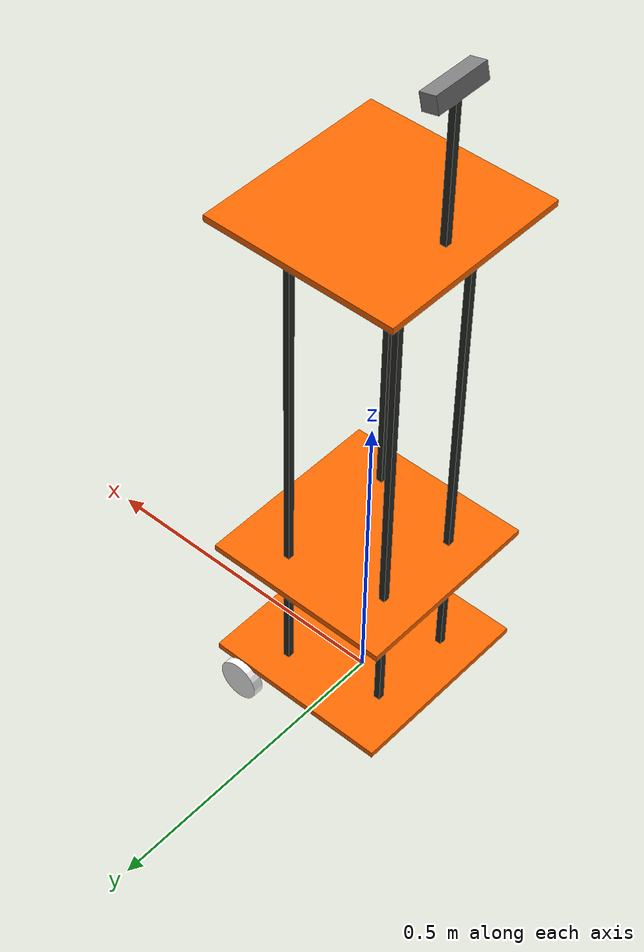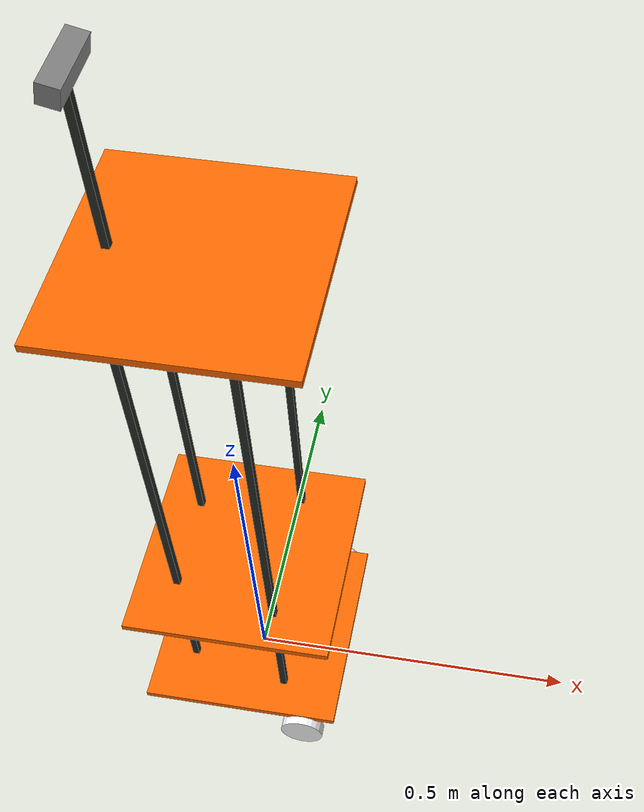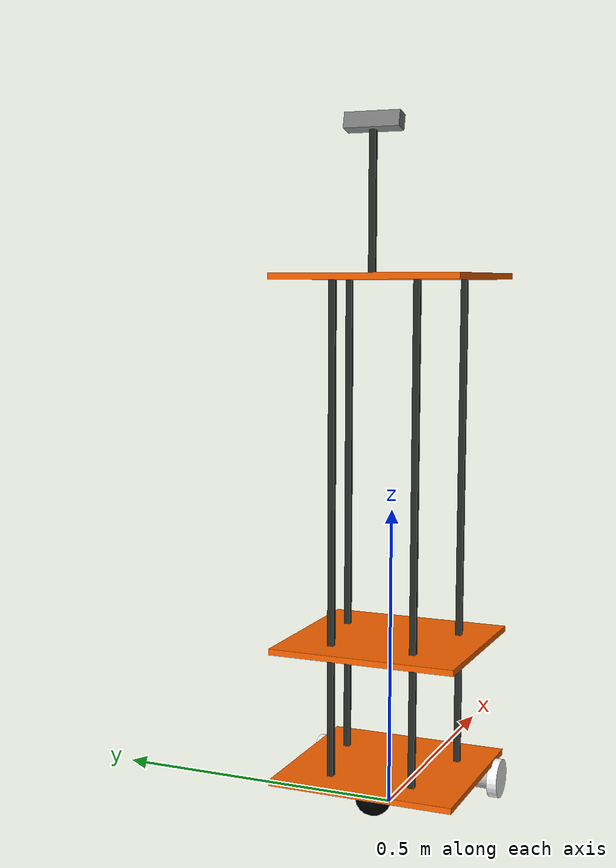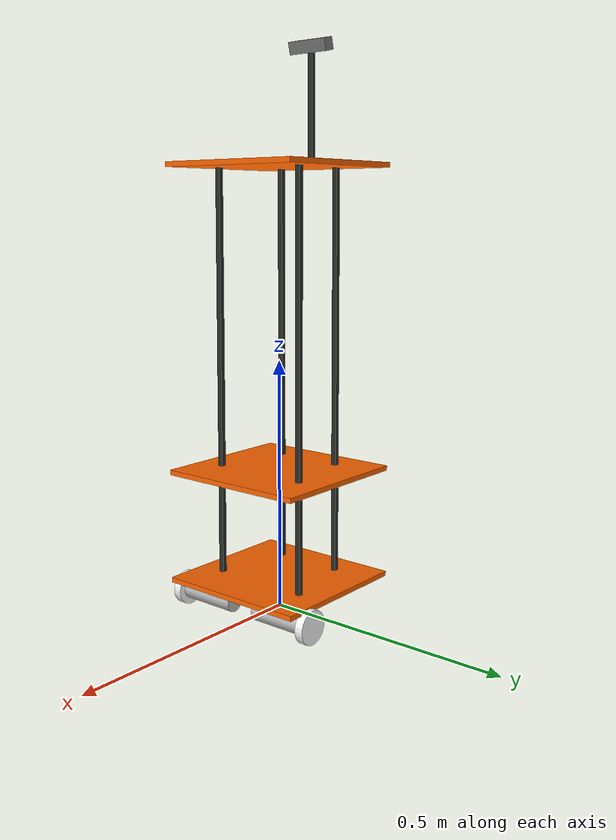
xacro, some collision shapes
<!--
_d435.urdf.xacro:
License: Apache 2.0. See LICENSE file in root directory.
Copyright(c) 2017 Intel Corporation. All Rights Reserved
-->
<?xml version="1.0"?>
<robot name="mrobot" xmlns:xacro="http://www.ros.org/wiki/xacro">

    <xacro:include filename="$(find nav_ros)/urdf/my_robot.urdf.xacro" />
    <xacro:include filename="$(find nav_ros)/urdf/_d435.urdf.xacro" />

    <mrobot_body/>
    <sensor_d435 parent="standoff_2in_9_link">
        <origin xyz="0 0 0.11" rpy="0 0.23 0.0"/>
    </sensor_d435>
</robot>

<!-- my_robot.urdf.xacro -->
<robot xmlns:xacro="http://www.ros.org/wiki/xacro">

    <xacro:property name="M_PI" value="3.14159"/>
    <xacro:property name="wheel_radius" value="0.033"/>
    <xacro:property name="wheel_length" value="0.017"/>
    <xacro:property name="wheel_offset_x" value="-0.1"/>
    <xacro:property name="wheel_offset_y" value="0.17"/>
    <xacro:property name="wheel_offset_z" value="-0.03"/>
    <xacro:property name="base_link_x" value="0.30"/>
    <xacro:property name="base_link_y" value="0.31"/>
    <xacro:property name="base_link_z" value="0.01"/>
    <xacro:property name="motor_radius" value="0.02"/>
    <xacro:property name="motor_length" value="0.12"/>
    <xacro:property name="motor_x" value="0.1"/>
    <xacro:property name="motor_y" value="0.09"/>
    <xacro:property name="plate_height1" value="0.22"/>
    <xacro:property name="plate_height2" value="0.6" />
    <xacro:property name="plate_height3" value="0.11" />
    <xacro:property name="standoff_x" value="0.12"/>
    <xacro:property name="standoff_y" value="0.10"/>
    <xacro:property name="stand_height_1" value="0.3" />
    <xacro:property name="stand_height_2" value="0.6" />
    <xacro:property name="stand_height_3" value="0.15" />

    <!-- 定义支架的宏 -->
    <xacro:macro name="mrobot_standoff_2in" params="parent number x_loc y_loc z_loc">
        <joint name="standoff_2in_${number}_joint" type="fixed">
            <origin xyz="${x_loc} ${y_loc} ${z_loc}" rpy="0 0 0" />
            <parent link="${parent}"/>
            <child link="standoff_2in_${number}_link" />
        </joint>

        <link name="standoff_2in_${number}_link">
            <inertial>
                <mass value="0.001" />
                <origin xyz="0 0 0" />
                <inertia ixx="0.0001" ixy="0.0" ixz="0.0"
                         iyy="0.0001" iyz="0.0"
                         izz="0.0001" />
            </inertial>

            <visual>
                <origin xyz=" 0 0 0 " rpy="0 0 0" />
                <geometry>
                    <box size="0.01 0.01 ${z_loc*2}" />
                </geometry>
                <material name="black">
                    <color rgba="0.16 0.17 0.15 0.9"/>
                </material>
            </visual>

            <collision>
                <origin xyz="0.0 0.0 0.0" rpy="0 0 0" />
                <geometry>
                    <box size="0.01 0.01 ${z_loc*2}" />
                </geometry>
            </collision>
        </link>
    </xacro:macro>

    <!--定义的是机械结构的整体-->
    <xacro:macro name="mrobot_body">
        <material name="Green">
            <color rgba="0.0 0.8 0.0 1.0"/>
        </material>
        <material name="yellow">
            <color rgba="1 0.4 0 1"/>
        </material>
        <material name="black">
            <color rgba="0 0 0 0.95"/>
        </material>
        <material name="gray">
            <color rgba="0.75 0.75 0.75 1"/>
        </material>

        <link name="base_footprint">
            <visual>
                <origin xyz="0 0 0" rpy="0 0 0" />
                <geometry>
                    <box size="0.001 0.001 0.001" />
                </geometry>
            </visual>
        </link>

        <link name="base_link">
            <inertial>
                <mass value="2" />
                <origin xyz="0 0 0.0" />
                <inertia ixx="0.01" ixy="0.0" ixz="0.0"
                         iyy="0.01" iyz="0.0" izz="0.5" />
            </inertial>

            <visual>
                <origin xyz=" 0 0 0" rpy="0 0 0" />
                <geometry>
                    <box size="${base_link_x} ${base_link_y} ${base_link_z}"/>
                </geometry>
                <material name="yellow" />
            </visual>

            <collision>
                <origin xyz="0 0 0" rpy="0 0 0" />
                <geometry>
                    <box size="${base_link_x} ${base_link_y} ${base_link_z}"/>
                </geometry>
            </collision>
        </link>

        <joint name="base_footprint_joint" type="fixed">
            <origin xyz="0 0 ${-wheel_offset_z*2}" rpy="0 0 0" />
            <parent link="base_footprint"/>
            <child link="base_link" />
        </joint>

        <link name="left_motor">
            <inertial>
                <origin xyz="0.0 0 0"/>
                <mass value="0.1" />
                <inertia ixx="0.001" ixy="0.0" ixz="0.0"
                         iyy="0.001" iyz="0.0" izz="0.001" />
            </inertial>

            <visual>
                <origin xyz="0 0 0" rpy="${M_PI/2} 0 0" />
                <geometry>
                    <cylinder radius="${motor_radius}" length = "${motor_length}"/>
                </geometry>
                <material name="gray" />
            </visual>

            <collision>
                <origin xyz="0 0 0" rpy="${M_PI/2} 0 0" />
                <geometry>
                    <cylinder radius="${motor_radius}" length = "${motor_length}"/>
                </geometry>
            </collision>
        </link>

        <joint name="base_left_motor_joint" type="fixed">
            <origin xyz="${motor_x} ${motor_y} ${wheel_offset_z}" rpy="0 0 0" />
            <parent link="base_link"/>
            <child link="left_motor" />
        </joint>

        <link name="left_wheel_link">
            <inertial>
                <origin xyz="0 0 0"/>
                <mass value="0.01" />
                <inertia ixx="0.001" ixy="0.0" ixz="0.0"
                         iyy="0.001" iyz="0.0" izz="0.001" />
            </inertial>

            <visual>
                <origin xyz="0 0 0" rpy="${M_PI/2} 0 0" />
                <geometry>
                    <cylinder radius="${wheel_radius}" length = "${wheel_length}"/>
                </geometry>
                <material name="white">
                    <color rgba="1 1 1 0.9"/>
                </material>
            </visual>

            <collision>
                <origin xyz="0 0 0" rpy="${M_PI/2} 0 0" />
                <geometry>
                    <cylinder radius="${wheel_radius}" length = "${wheel_length}"/>
                </geometry>
            </collision>
        </link>

        <joint name="left_wheel_joint" type="continuous">
            <origin xyz="0 ${(motor_length+wheel_length)/2} 0" rpy="0 0 0"/>
            <parent link="left_motor"/>
            <child link="left_wheel_link"/>
            <axis xyz="0 1 0"/>
        </joint>

        <link name="right_motor">
            <inertial>
                <origin xyz="0.0 0 0"/>
                <mass value="0.1" />
                <inertia ixx="0.001" ixy="0.0" ixz="0.0"
                         iyy="0.001" iyz="0.0" izz="0.001" />
            </inertial>

            <visual>
                <origin xyz="0 0 0" rpy="${M_PI/2} 0 0" />
                <geometry>
                    <cylinder radius="${motor_radius}" length = "${motor_length}" />
                </geometry>
                <material name="gray" />
            </visual>

            <collision>
                <origin xyz="0 0 0" rpy="${M_PI/2} 0 0" />
                <geometry>
                    <cylinder radius="${motor_radius}" length = "${motor_length}"/>
                </geometry>
            </collision>
        </link>

        <joint name="base_right_motor_joint" type="fixed">
            <origin xyz="${motor_x} -${motor_y} ${wheel_offset_z}" rpy="0 0 0" />
            <parent link="base_link"/>
            <child link="right_motor" />
        </joint>

        <link name="right_wheel_link">
            <inertial>
                <origin xyz="0 0 0"/>
                <mass value="0.01" />
                <inertia ixx="0.001" ixy="0.0" ixz="0.0"
                         iyy="0.001" iyz="0.0" izz="0.001" />
            </inertial>

            <visual>
                <origin xyz="0 0 0" rpy="${M_PI/2} 0 0" />
                <geometry>
                    <cylinder radius="${wheel_radius}" length = "${wheel_length}"/>
                </geometry>
                <material name="white">
                    <color rgba="1 1 1 0.9"/>
                </material>
            </visual>

            <collision>
                <origin xyz="0 0 0" rpy="${M_PI/2} 0 0" />
                <geometry>
                    <cylinder radius="${wheel_radius}" length = "${wheel_length}"/>
                </geometry>
            </collision>
        </link>

        <joint name="right_wheel_joint" type="continuous">
            <origin xyz="0 -${(motor_length+wheel_length)/2} 0" rpy="0 0 0"/>
            <parent link="right_motor"/>
            <child link="right_wheel_link"/>
            <axis xyz="0 1 0"/>
        </joint>

        <link name="front_caster_link">
            <inertial>
                <origin xyz="0 0 0"/>
                <mass value="0.001" />
                <inertia ixx="0.0001" ixy="0.0" ixz="0.0"
                         iyy="0.0001" iyz="0.0" izz="0.0001" />
            </inertial>

            <visual>
                <origin xyz="0 0 0" rpy="${M_PI/2} 0 0"/>
                <geometry>
                    <sphere radius="0.03" />
                </geometry>
                <material name="black" />
            </visual>

            <collision>
                <origin xyz="0 0 0.01" rpy="${M_PI/2} 0 0" />
                <geometry>
                    <sphere radius="0.1" />
                </geometry>
            </collision>
        </link>

        <joint name="front_caster_joint" type="fixed">
            <origin xyz="-${base_link_z+wheel_radius/2+0.05} 0 -${wheel_radius/2 + base_link_z}" rpy="0 0 0"/>
            <parent link="base_link"/>
            <child link="front_caster_link"/>
        </joint>

        <mrobot_standoff_2in parent="base_link" number="1" x_loc="-${standoff_x/2 + 0.03}" y_loc="-${standoff_y - 0.03}" z_loc="${plate_height1/2+base_link_z/2-0.005}" />
        <mrobot_standoff_2in parent="base_link" number="2" x_loc="-${standoff_x/2 + 0.03}" y_loc="${standoff_y - 0.03}" z_loc="${plate_height1/2+base_link_z/2-0.005}" />
        <mrobot_standoff_2in parent="base_link" number="3" x_loc="${standoff_x/2}" y_loc="-${standoff_y}" z_loc="${plate_height1/2+base_link_z/2-0.005}" />
        <mrobot_standoff_2in parent="base_link" number="4" x_loc="${standoff_x/2}" y_loc="${standoff_y}" z_loc="${plate_height1/2+base_link_z/2-0.005}" />

        <joint name="plate_1_joint" type="fixed">
            <origin xyz="0 0 ${plate_height1}" rpy="0 0 0" />
            <parent link="base_link"/>
            <child link="plate_1_link" />
        </joint>

        <link name="plate_1_link">
            <inertial>
                <mass value="0.1" />
                <origin xyz="0 0 0" />
                <inertia ixx="0.01" ixy="0.0" ixz="0.0"
                         iyy="0.01" iyz="0.0" izz="0.01" />
            </inertial>

            <visual>
                <origin xyz=" 0 0 0 " rpy="0 0 0" />
                <geometry>
                    <box size="${base_link_x} ${base_link_y} ${base_link_z}"/>
                </geometry>
                <material name="yellow"/>
                <alpha type="0.5"/>
            </visual>

            <collision>
                <origin xyz="0.0 0.0 0.0" rpy="0 0 0" />
                <geometry>
                    <box size="${base_link_x} ${base_link_y} ${base_link_z}"/>
                </geometry>
            </collision>
        </link>

        <mrobot_standoff_2in parent="plate_1_link" number="5" x_loc="-${standoff_x/2 + 0.03}" y_loc="-${standoff_y - 0.03}" z_loc="${plate_height2/2}" />
        <mrobot_standoff_2in parent="plate_1_link" number="6" x_loc="-${standoff_x/2 + 0.03}" y_loc="${standoff_y - 0.03}" z_loc="${plate_height2/2}" />
        <mrobot_standoff_2in parent="plate_1_link" number="7" x_loc="${standoff_x/2}" y_loc="-${standoff_y}" z_loc="${plate_height2/2}" />
        <mrobot_standoff_2in parent="plate_1_link" number="8" x_loc="${standoff_x/2}" y_loc="${standoff_y}" z_loc="${plate_height2/2}" />

        <joint name="plate_2_joint" type="fixed">
            <origin xyz="0 0 ${plate_height2}" rpy="0 0 0" />
            <parent link="plate_1_link"/>
            <child link="plate_2_link" />
        </joint>

        <link name="plate_2_link">
            <inertial>
                <mass value="0.01" />
                <origin xyz="0 0 0" />
                <inertia ixx="0.001" ixy="0.0" ixz="0.0"
                         iyy="0.001" iyz="0.0" izz="0.001" />
            </inertial>

            <visual>
                <origin xyz=" 0 0 0 " rpy="0 0 0" />
                <geometry>
                    <box size="${base_link_x} ${base_link_y} ${base_link_z}"/>
                </geometry>
                <material name="yellow" />
            </visual>

            <collision>
                <origin xyz="0.0 0.0 0.0" rpy="0 0 0" />
                <geometry>
                    <box size="${base_link_x} ${base_link_y} ${base_link_z}"/>
                </geometry>
            </collision>
        </link>

        <mrobot_standoff_2in parent="plate_2_link" number="9" x_loc="-0.1" y_loc="0" z_loc="${plate_height3}"/>

    </xacro:macro>

</robot>

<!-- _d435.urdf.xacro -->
<robot name="sensor_d435" xmlns:xacro="http://ros.org/wiki/xacro">
  <xacro:macro name="sensor_d435" params="parent *origin">
    <xacro:property name="M_PI" value="3.1415926535897931" />

    <!-- The following values are approximate, and the camera node
     publishing TF values with actual calibrated camera extrinsic values -->
    <xacro:property name="d435_cam_depth_to_left_ir_offset" value="0.0"/>
    <xacro:property name="d435_cam_depth_to_right_ir_offset" value="-0.050"/>
    <xacro:property name="d435_cam_depth_to_color_offset" value="0.015"/>

    <!-- The following values model the aluminum peripherial case for the
  	D435 camera, with the camera joint represented by the actual
  	peripherial camera tripod mount -->
    <xacro:property name="d435_cam_width" value="0.090"/>
    <xacro:property name="d435_cam_height" value="0.025"/>
    <xacro:property name="d435_cam_depth" value="0.02505"/>
    <xacro:property name="d435_cam_mount_from_center_offset" value="0.0149"/>

    <!-- The following offset is relative the the physical D435 camera peripherial
  	camera tripod mount -->
    <xacro:property name="d435_cam_depth_px" value="${d435_cam_mount_from_center_offset}"/>
    <xacro:property name="d435_cam_depth_py" value="0.0175"/>
    <xacro:property name="d435_cam_depth_pz" value="${d435_cam_height/2}"/>

    <material name="aluminum">
	  <color rgba="0.5 0.5 0.5 1"/>
    </material>

    <!-- camera body, with origin at bottom screw mount -->
    <joint name="camera_joint" type="fixed">
      <xacro:insert_block name="origin" />
      <parent link="${parent}"/>
      <child link="camera_bottom_screw_frame" />
    </joint>
    <link name="camera_bottom_screw_frame"/>

    <joint name="camera_link_joint" type="fixed">
      <origin xyz="0 ${d435_cam_depth_py} ${d435_cam_depth_pz}" rpy="0 0 0"/>
      <parent link="camera_bottom_screw_frame"/>
      <child link="camera_link" />
    </joint>

    <link name="camera_link">
      <visual>
      <origin xyz="${d435_cam_mount_from_center_offset} ${-d435_cam_depth_py} 0" rpy="${M_PI/2} 0 ${M_PI/2}"/>
        <geometry>
	  <mesh filename="package://realsense2_description/meshes/d435.dae" />

        </geometry>
        <material name="aluminum"/>
      </visual>
      <collision>
        <origin xyz="0 ${-d435_cam_depth_py} 0" rpy="0 0 0"/>
        <geometry>
        <box size="${d435_cam_depth} ${d435_cam_width} ${d435_cam_height}"/>
        </geometry>
      </collision>
      <inertial>
        <!-- The following are not reliable values, and should not be used for modeling -->
        <mass value="0.564" />
        <origin xyz="0 0 0" />
        <inertia ixx="0.003881243" ixy="0.0" ixz="0.0" iyy="0.000498940" iyz="0.0" izz="0.003879257" />
      </inertial>
    </link>

    <!-- camera depth joints and links -->
    <joint name="camera_depth_joint" type="fixed">
      <origin xyz="0 0 0" rpy="0 0 0"/>
      <parent link="camera_link"/>
      <child link="camera_depth_frame" />
    </joint>
    <link name="camera_depth_frame"/>

    <joint name="camera_depth_optical_joint" type="fixed">
      <origin xyz="0 0 0" rpy="${-M_PI/2} 0 ${-M_PI/2}" />
      <parent link="camera_depth_frame" />
      <child link="camera_depth_optical_frame" />
    </joint>
    <link name="camera_depth_optical_frame"/>

    <!-- camera left IR joints and links -->
    <joint name="camera_left_ir_joint" type="fixed">
      <origin xyz="0 ${d435_cam_depth_to_left_ir_offset} 0" rpy="0 0 0" />
      <parent link="camera_depth_frame" />
      <child link="camera_left_ir_frame" />
    </joint>
    <link name="camera_left_ir_frame"/>

    <joint name="camera_left_ir_optical_joint" type="fixed">
      <origin xyz="0 0 0" rpy="${-M_PI/2} 0 ${-M_PI/2}" />
      <parent link="camera_left_ir_frame" />
      <child link="camera_left_ir_optical_frame" />
    </joint>
    <link name="camera_left_ir_optical_frame"/>

    <!-- camera right IR joints and links -->
    <joint name="camera_right_ir_joint" type="fixed">
      <origin xyz="0 ${d435_cam_depth_to_right_ir_offset} 0" rpy="0 0 0" />
      <parent link="camera_depth_frame" />
      <child link="camera_right_ir_frame" />
    </joint>
    <link name="camera_right_ir_frame"/>

    <joint name="camera_right_ir_optical_joint" type="fixed">
      <origin xyz="0 0 0" rpy="${-M_PI/2} 0 ${-M_PI/2}" />
      <parent link="camera_right_ir_frame" />
      <child link="camera_right_ir_optical_frame" />
    </joint>
    <link name="camera_right_ir_optical_frame"/>

    <!-- camera color joints and links -->
    <joint name="camera_color_joint" type="fixed">
      <origin xyz="0 ${d435_cam_depth_to_color_offset} 0" rpy="0 0 0" />
      <parent link="camera_depth_frame" />
      <child link="camera_color_frame" />
    </joint>
    <link name="camera_color_frame"/>

    <joint name="camera_color_optical_joint" type="fixed">
      <origin xyz="0 0 0" rpy="${-M_PI/2} 0 ${-M_PI/2}" />
      <parent link="camera_color_frame" />
      <child link="camera_color_optical_frame" />
    </joint>
    <link name="camera_color_optical_frame"/>
  </xacro:macro>
</robot>
